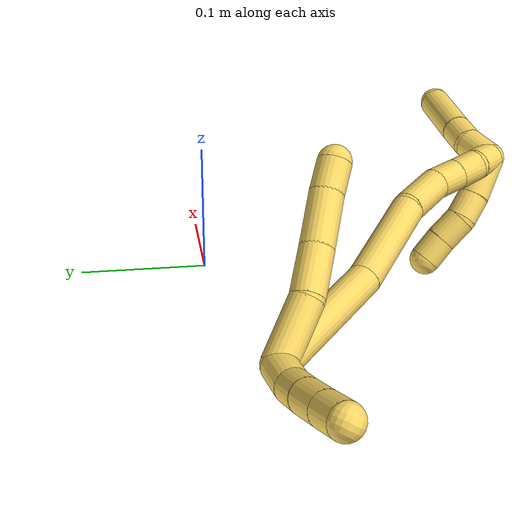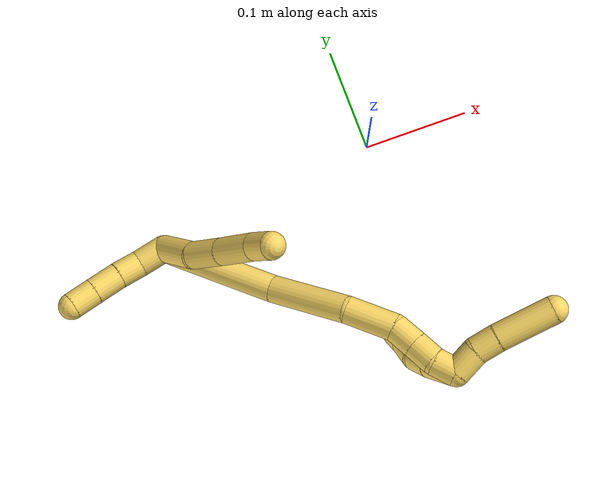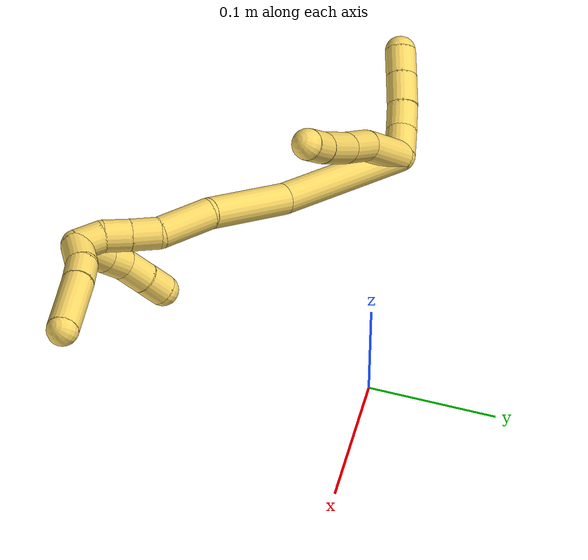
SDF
<sdf version="1.7">
 <world name="default">
  <model name="5">
   <static>0</static>
   <link name="5">
    <collision name="collision-cylinder-e_1_2_8">
     <pose>0.001372 -0.002314 -0.023745 3.04445 0.057442 1.06758</pose>
     <geometry><cylinder><radius>0.0125</radius><length>0.047795</length></cylinder></geometry>
     <surface>
      <friction><ode><mu>1.16</mu><mu2>1.16</mu2><slip1>0</slip1><slip2>0</slip2></ode></friction>
      <contact><ode><kp>1e+06</kp><kd>1</kd><max_vel>0</max_vel><min_depth>0.001</min_depth></ode></contact>
     </surface>
    </collision>
    <visual name="visual-cylinder-e_1_2_8">
     <pose>0.001372 -0.002314 -0.023745 3.04445 0.057442 1.06758</pose>
     <geometry><cylinder><radius>0.0125</radius><length>0.047795</length></cylinder></geometry>
     <material><ambient>1 0.858824 0.4 1</ambient></material>
    </visual>
    <collision name="collision-cylinder-e_2_8_9">
     <pose>0.003618 -0.01138 -0.064525 2.76418 0.047657 0.248302</pose>
     <geometry><cylinder><radius>0.0125</radius><length>0.036688</length></cylinder></geometry>
     <surface>
      <friction><ode><mu>1.16</mu><mu2>1.16</mu2><slip1>0</slip1><slip2>0</slip2></ode></friction>
      <contact><ode><kp>1e+06</kp><kd>1</kd><max_vel>0</max_vel><min_depth>0.001</min_depth></ode></contact>
     </surface>
    </collision>
    <visual name="visual-cylinder-e_2_8_9">
     <pose>0.003618 -0.01138 -0.064525 2.76418 0.047657 0.248302</pose>
     <geometry><cylinder><radius>0.0125</radius><length>0.036688</length></cylinder></geometry>
     <material><ambient>1 0.858824 0.4 1</ambient></material>
    </visual>
    <collision name="collision-cylinder-e_3_9_10">
     <pose>0.004293 -0.025081 -0.101097 2.79992 -0.009583 -0.055536</pose>
     <geometry><cylinder><radius>0.0125</radius><length>0.041478</length></cylinder></geometry>
     <surface>
      <friction><ode><mu>1.16</mu><mu2>1.16</mu2><slip1>0</slip1><slip2>0</slip2></ode></friction>
      <contact><ode><kp>1e+06</kp><kd>1</kd><max_vel>0</max_vel><min_depth>0.001</min_depth></ode></contact>
     </surface>
    </collision>
    <visual name="visual-cylinder-e_3_9_10">
     <pose>0.004293 -0.025081 -0.101097 2.79992 -0.009583 -0.055536</pose>
     <geometry><cylinder><radius>0.0125</radius><length>0.041478</length></cylinder></geometry>
     <material><ambient>1 0.858824 0.4 1</ambient></material>
    </visual>
    <collision name="collision-cylinder-e_4_10_6">
     <pose>0.003706 -0.034821 -0.132321 2.90714 -0.032341 -0.272942</pose>
     <geometry><cylinder><radius>0.0125</radius><length>0.024039</length></cylinder></geometry>
     <surface>
      <friction><ode><mu>1.16</mu><mu2>1.16</mu2><slip1>0</slip1><slip2>0</slip2></ode></friction>
      <contact><ode><kp>1e+06</kp><kd>1</kd><max_vel>0</max_vel><min_depth>0.001</min_depth></ode></contact>
     </surface>
    </collision>
    <visual name="visual-cylinder-e_4_10_6">
     <pose>0.003706 -0.034821 -0.132321 2.90714 -0.032341 -0.272942</pose>
     <geometry><cylinder><radius>0.0125</radius><length>0.024039</length></cylinder></geometry>
     <material><ambient>1 0.858824 0.4 1</ambient></material>
    </visual>
    <collision name="collision-cylinder-e_1_2_11">
     <pose>-0.00233 0.012081 0.004425 -1.21967 -0.179118 0.125316</pose>
     <geometry><cylinder><radius>0.0125</radius><length>0.026151</length></cylinder></geometry>
     <surface>
      <friction><ode><mu>1.16</mu><mu2>1.16</mu2><slip1>0</slip1><slip2>0</slip2></ode></friction>
      <contact><ode><kp>1e+06</kp><kd>1</kd><max_vel>0</max_vel><min_depth>0.001</min_depth></ode></contact>
     </surface>
    </collision>
    <visual name="visual-cylinder-e_1_2_11">
     <pose>-0.00233 0.012081 0.004425 -1.21967 -0.179118 0.125316</pose>
     <geometry><cylinder><radius>0.0125</radius><length>0.026151</length></cylinder></geometry>
     <material><ambient>1 0.858824 0.4 1</ambient></material>
    </visual>
    <collision name="collision-cylinder-e_2_11_12">
     <pose>-0.008414 0.035109 0.010271 -1.4418 -0.327914 0.288713</pose>
     <geometry><cylinder><radius>0.0125</radius><length>0.023319</length></cylinder></geometry>
     <surface>
      <friction><ode><mu>1.16</mu><mu2>1.16</mu2><slip1>0</slip1><slip2>0</slip2></ode></friction>
      <contact><ode><kp>1e+06</kp><kd>1</kd><max_vel>0</max_vel><min_depth>0.001</min_depth></ode></contact>
     </surface>
    </collision>
    <visual name="visual-cylinder-e_2_11_12">
     <pose>-0.008414 0.035109 0.010271 -1.4418 -0.327914 0.288713</pose>
     <geometry><cylinder><radius>0.0125</radius><length>0.023319</length></cylinder></geometry>
     <material><ambient>1 0.858824 0.4 1</ambient></material>
    </visual>
    <collision name="collision-cylinder-e_3_12_13">
     <pose>-0.015697 0.058826 0.012882 -1.47777 -0.268367 0.244744</pose>
     <geometry><cylinder><radius>0.0125</radius><length>0.026604</length></cylinder></geometry>
     <surface>
      <friction><ode><mu>1.16</mu><mu2>1.16</mu2><slip1>0</slip1><slip2>0</slip2></ode></friction>
      <contact><ode><kp>1e+06</kp><kd>1</kd><max_vel>0</max_vel><min_depth>0.001</min_depth></ode></contact>
     </surface>
    </collision>
    <visual name="visual-cylinder-e_3_12_13">
     <pose>-0.015697 0.058826 0.012882 -1.47777 -0.268367 0.244744</pose>
     <geometry><cylinder><radius>0.0125</radius><length>0.026604</length></cylinder></geometry>
     <material><ambient>1 0.858824 0.4 1</ambient></material>
    </visual>
    <collision name="collision-cylinder-e_4_13_5">
     <pose>-0.02236 0.083101 0.015031 -1.48781 -0.265263 0.244334</pose>
     <geometry><cylinder><radius>0.0125</radius><length>0.023926</length></cylinder></geometry>
     <surface>
      <friction><ode><mu>1.16</mu><mu2>1.16</mu2><slip1>0</slip1><slip2>0</slip2></ode></friction>
      <contact><ode><kp>1e+06</kp><kd>1</kd><max_vel>0</max_vel><min_depth>0.001</min_depth></ode></contact>
     </surface>
    </collision>
    <visual name="visual-cylinder-e_4_13_5">
     <pose>-0.02236 0.083101 0.015031 -1.48781 -0.265263 0.244334</pose>
     <geometry><cylinder><radius>0.0125</radius><length>0.023926</length></cylinder></geometry>
     <material><ambient>1 0.858824 0.4 1</ambient></material>
    </visual>
    <collision name="collision-cylinder-e_1_2_14">
     <pose>0.034171 -0.013938 -0.041923 2.82063 0.658347 2.25654</pose>
     <geometry><cylinder><radius>0.0125</radius><length>0.111704</length></cylinder></geometry>
     <surface>
      <friction><ode><mu>1.16</mu><mu2>1.16</mu2><slip1>0</slip1><slip2>0</slip2></ode></friction>
      <contact><ode><kp>1e+06</kp><kd>1</kd><max_vel>0</max_vel><min_depth>0.001</min_depth></ode></contact>
     </surface>
    </collision>
    <visual name="visual-cylinder-e_1_2_14">
     <pose>0.034171 -0.013938 -0.041923 2.82063 0.658347 2.25654</pose>
     <geometry><cylinder><radius>0.0125</radius><length>0.111704</length></cylinder></geometry>
     <material><ambient>1 0.858824 0.4 1</ambient></material>
    </visual>
    <collision name="collision-cylinder-e_2_14_15">
     <pose>0.083613 -0.03698 -0.118095 2.88176 0.406878 2.01245</pose>
     <geometry><cylinder><radius>0.0125</radius><length>0.077178</length></cylinder></geometry>
     <surface>
      <friction><ode><mu>1.16</mu><mu2>1.16</mu2><slip1>0</slip1><slip2>0</slip2></ode></friction>
      <contact><ode><kp>1e+06</kp><kd>1</kd><max_vel>0</max_vel><min_depth>0.001</min_depth></ode></contact>
     </surface>
    </collision>
    <visual name="visual-cylinder-e_2_14_15">
     <pose>0.083613 -0.03698 -0.118095 2.88176 0.406878 2.01245</pose>
     <geometry><cylinder><radius>0.0125</radius><length>0.077178</length></cylinder></geometry>
     <material><ambient>1 0.858824 0.4 1</ambient></material>
    </visual>
    <collision name="collision-cylinder-e_3_15_16">
     <pose>0.113308 -0.05184 -0.168784 2.80487 0.691621 2.26</pose>
     <geometry><cylinder><radius>0.0125</radius><length>0.045231</length></cylinder></geometry>
     <surface>
      <friction><ode><mu>1.16</mu><mu2>1.16</mu2><slip1>0</slip1><slip2>0</slip2></ode></friction>
      <contact><ode><kp>1e+06</kp><kd>1</kd><max_vel>0</max_vel><min_depth>0.001</min_depth></ode></contact>
     </surface>
    </collision>
    <visual name="visual-cylinder-e_3_15_16">
     <pose>0.113308 -0.05184 -0.168784 2.80487 0.691621 2.26</pose>
     <geometry><cylinder><radius>0.0125</radius><length>0.045231</length></cylinder></geometry>
     <material><ambient>1 0.858824 0.4 1</ambient></material>
    </visual>
    <collision name="collision-cylinder-e_4_16_17">
     <pose>0.135555 -0.056568 -0.193677 -3.02066 0.743109 -2.83331</pose>
     <geometry><cylinder><radius>0.0125</radius><length>0.023125</length></cylinder></geometry>
     <surface>
      <friction><ode><mu>1.16</mu><mu2>1.16</mu2><slip1>0</slip1><slip2>0</slip2></ode></friction>
      <contact><ode><kp>1e+06</kp><kd>1</kd><max_vel>0</max_vel><min_depth>0.001</min_depth></ode></contact>
     </surface>
    </collision>
    <visual name="visual-cylinder-e_4_16_17">
     <pose>0.135555 -0.056568 -0.193677 -3.02066 0.743109 -2.83331</pose>
     <geometry><cylinder><radius>0.0125</radius><length>0.023125</length></cylinder></geometry>
     <material><ambient>1 0.858824 0.4 1</ambient></material>
    </visual>
    <collision name="collision-cylinder-e_5_17_18">
     <pose>0.150465 -0.054337 -0.21018 -2.9931 0.716326 -2.74927</pose>
     <geometry><cylinder><radius>0.0125</radius><length>0.021587</length></cylinder></geometry>
     <surface>
      <friction><ode><mu>1.16</mu><mu2>1.16</mu2><slip1>0</slip1><slip2>0</slip2></ode></friction>
      <contact><ode><kp>1e+06</kp><kd>1</kd><max_vel>0</max_vel><min_depth>0.001</min_depth></ode></contact>
     </surface>
    </collision>
    <visual name="visual-cylinder-e_5_17_18">
     <pose>0.150465 -0.054337 -0.21018 -2.9931 0.716326 -2.74927</pose>
     <geometry><cylinder><radius>0.0125</radius><length>0.021587</length></cylinder></geometry>
     <material><ambient>1 0.858824 0.4 1</ambient></material>
    </visual>
    <collision name="collision-cylinder-e_6_18_1">
     <pose>0.165295 -0.054933 -0.225225 2.88956 0.820162 2.57445</pose>
     <geometry><cylinder><radius>0.0125</radius><length>0.021175</length></cylinder></geometry>
     <surface>
      <friction><ode><mu>1.16</mu><mu2>1.16</mu2><slip1>0</slip1><slip2>0</slip2></ode></friction>
      <contact><ode><kp>1e+06</kp><kd>1</kd><max_vel>0</max_vel><min_depth>0.001</min_depth></ode></contact>
     </surface>
    </collision>
    <visual name="visual-cylinder-e_6_18_1">
     <pose>0.165295 -0.054933 -0.225225 2.88956 0.820162 2.57445</pose>
     <geometry><cylinder><radius>0.0125</radius><length>0.021175</length></cylinder></geometry>
     <material><ambient>1 0.858824 0.4 1</ambient></material>
    </visual>
    <collision name="collision-cylinder-e_1_1_19">
     <pose>0.173371 -0.056149 -0.214691 -0.033387 0.019039 -0.000318</pose>
     <geometry><cylinder><radius>0.0125</radius><length>0.035082</length></cylinder></geometry>
     <surface>
      <friction><ode><mu>1.16</mu><mu2>1.16</mu2><slip1>0</slip1><slip2>0</slip2></ode></friction>
      <contact><ode><kp>1e+06</kp><kd>1</kd><max_vel>0</max_vel><min_depth>0.001</min_depth></ode></contact>
     </surface>
    </collision>
    <visual name="visual-cylinder-e_1_1_19">
     <pose>0.173371 -0.056149 -0.214691 -0.033387 0.019039 -0.000318</pose>
     <geometry><cylinder><radius>0.0125</radius><length>0.035082</length></cylinder></geometry>
     <material><ambient>1 0.858824 0.4 1</ambient></material>
    </visual>
    <collision name="collision-cylinder-e_2_19_20">
     <pose>0.172739 -0.056009 -0.186361 0.041253 -0.089061 -0.001838</pose>
     <geometry><cylinder><radius>0.0125</radius><length>0.021707</length></cylinder></geometry>
     <surface>
      <friction><ode><mu>1.16</mu><mu2>1.16</mu2><slip1>0</slip1><slip2>0</slip2></ode></friction>
      <contact><ode><kp>1e+06</kp><kd>1</kd><max_vel>0</max_vel><min_depth>0.001</min_depth></ode></contact>
     </surface>
    </collision>
    <visual name="visual-cylinder-e_2_19_20">
     <pose>0.172739 -0.056009 -0.186361 0.041253 -0.089061 -0.001838</pose>
     <geometry><cylinder><radius>0.0125</radius><length>0.021707</length></cylinder></geometry>
     <material><ambient>1 0.858824 0.4 1</ambient></material>
    </visual>
    <collision name="collision-cylinder-e_3_20_21">
     <pose>0.170553 -0.0605 -0.164934 0.363739 -0.10701 -0.019698</pose>
     <geometry><cylinder><radius>0.0125</radius><length>0.02287</length></cylinder></geometry>
     <surface>
      <friction><ode><mu>1.16</mu><mu2>1.16</mu2><slip1>0</slip1><slip2>0</slip2></ode></friction>
      <contact><ode><kp>1e+06</kp><kd>1</kd><max_vel>0</max_vel><min_depth>0.001</min_depth></ode></contact>
     </surface>
    </collision>
    <visual name="visual-cylinder-e_3_20_21">
     <pose>0.170553 -0.0605 -0.164934 0.363739 -0.10701 -0.019698</pose>
     <geometry><cylinder><radius>0.0125</radius><length>0.02287</length></cylinder></geometry>
     <material><ambient>1 0.858824 0.4 1</ambient></material>
    </visual>
    <collision name="collision-cylinder-e_4_21_4">
     <pose>0.168774 -0.06745 -0.144578 0.290139 -0.054852 -0.008016</pose>
     <geometry><cylinder><radius>0.0125</radius><length>0.020341</length></cylinder></geometry>
     <surface>
      <friction><ode><mu>1.16</mu><mu2>1.16</mu2><slip1>0</slip1><slip2>0</slip2></ode></friction>
      <contact><ode><kp>1e+06</kp><kd>1</kd><max_vel>0</max_vel><min_depth>0.001</min_depth></ode></contact>
     </surface>
    </collision>
    <visual name="visual-cylinder-e_4_21_4">
     <pose>0.168774 -0.06745 -0.144578 0.290139 -0.054852 -0.008016</pose>
     <geometry><cylinder><radius>0.0125</radius><length>0.020341</length></cylinder></geometry>
     <material><ambient>1 0.858824 0.4 1</ambient></material>
    </visual>
    <collision name="collision-cylinder-e_1_1_22">
     <pose>0.170935 -0.068377 -0.236513 1.92415 -0.16776 -0.240088</pose>
     <geometry><cylinder><radius>0.0125</radius><length>0.025172</length></cylinder></geometry>
     <surface>
      <friction><ode><mu>1.16</mu><mu2>1.16</mu2><slip1>0</slip1><slip2>0</slip2></ode></friction>
      <contact><ode><kp>1e+06</kp><kd>1</kd><max_vel>0</max_vel><min_depth>0.001</min_depth></ode></contact>
     </surface>
    </collision>
    <visual name="visual-cylinder-e_1_1_22">
     <pose>0.170935 -0.068377 -0.236513 1.92415 -0.16776 -0.240088</pose>
     <geometry><cylinder><radius>0.0125</radius><length>0.025172</length></cylinder></geometry>
     <material><ambient>1 0.858824 0.4 1</ambient></material>
    </visual>
    <collision name="collision-cylinder-e_2_22_23">
     <pose>0.169679 -0.089465 -0.246194 2.0891 0.077558 0.133386</pose>
     <geometry><cylinder><radius>0.0125</radius><length>0.021812</length></cylinder></geometry>
     <surface>
      <friction><ode><mu>1.16</mu><mu2>1.16</mu2><slip1>0</slip1><slip2>0</slip2></ode></friction>
      <contact><ode><kp>1e+06</kp><kd>1</kd><max_vel>0</max_vel><min_depth>0.001</min_depth></ode></contact>
     </surface>
    </collision>
    <visual name="visual-cylinder-e_2_22_23">
     <pose>0.169679 -0.089465 -0.246194 2.0891 0.077558 0.133386</pose>
     <geometry><cylinder><radius>0.0125</radius><length>0.021812</length></cylinder></geometry>
     <material><ambient>1 0.858824 0.4 1</ambient></material>
    </visual>
    <collision name="collision-cylinder-e_3_23_3">
     <pose>0.174743 -0.121445 -0.264886 2.10416 0.159862 0.278817</pose>
     <geometry><cylinder><radius>0.0125</radius><length>0.053016</length></cylinder></geometry>
     <surface>
      <friction><ode><mu>1.16</mu><mu2>1.16</mu2><slip1>0</slip1><slip2>0</slip2></ode></friction>
      <contact><ode><kp>1e+06</kp><kd>1</kd><max_vel>0</max_vel><min_depth>0.001</min_depth></ode></contact>
     </surface>
    </collision>
    <visual name="visual-cylinder-e_3_23_3">
     <pose>0.174743 -0.121445 -0.264886 2.10416 0.159862 0.278817</pose>
     <geometry><cylinder><radius>0.0125</radius><length>0.053016</length></cylinder></geometry>
     <material><ambient>1 0.858824 0.4 1</ambient></material>
    </visual>
    <collision name="collision-sphere-3">
     <pose>0.178963 -0.14398 -0.278192 0 -0 0</pose>
     <geometry><sphere><radius>0.0125</radius></sphere></geometry>
     <surface>
      <friction><ode><mu>1.16</mu><mu2>1.16</mu2><slip1>0</slip1><slip2>0</slip2></ode></friction>
      <contact><ode><kp>1e+06</kp><kd>1</kd><max_vel>0</max_vel><min_depth>0.001</min_depth></ode></contact>
     </surface>
    </collision>
    <visual name="visual-sphere-3">
     <pose>0.178963 -0.14398 -0.278192 0 -0 0</pose>
     <geometry><sphere><radius>0.0125</radius></sphere></geometry>
     <material><ambient>1 0.858824 0.4 1</ambient></material>
    </visual>
    <collision name="collision-sphere-23">
     <pose>0.170524 -0.09891 -0.251581 0 -0 0</pose>
     <geometry><sphere><radius>0.0125</radius></sphere></geometry>
     <surface>
      <friction><ode><mu>1.16</mu><mu2>1.16</mu2><slip1>0</slip1><slip2>0</slip2></ode></friction>
      <contact><ode><kp>1e+06</kp><kd>1</kd><max_vel>0</max_vel><min_depth>0.001</min_depth></ode></contact>
     </surface>
    </collision>
    <visual name="visual-sphere-23">
     <pose>0.170524 -0.09891 -0.251581 0 -0 0</pose>
     <geometry><sphere><radius>0.0125</radius></sphere></geometry>
     <material><ambient>1 0.858824 0.4 1</ambient></material>
    </visual>
    <collision name="collision-sphere-22">
     <pose>0.168834 -0.08002 -0.240807 0 -0 0</pose>
     <geometry><sphere><radius>0.0125</radius></sphere></geometry>
     <surface>
      <friction><ode><mu>1.16</mu><mu2>1.16</mu2><slip1>0</slip1><slip2>0</slip2></ode></friction>
      <contact><ode><kp>1e+06</kp><kd>1</kd><max_vel>0</max_vel><min_depth>0.001</min_depth></ode></contact>
     </surface>
    </collision>
    <visual name="visual-sphere-22">
     <pose>0.168834 -0.08002 -0.240807 0 -0 0</pose>
     <geometry><sphere><radius>0.0125</radius></sphere></geometry>
     <material><ambient>1 0.858824 0.4 1</ambient></material>
    </visual>
    <collision name="collision-sphere-4">
     <pose>0.168216 -0.070355 -0.134847 0 -0 0</pose>
     <geometry><sphere><radius>0.0125</radius></sphere></geometry>
     <surface>
      <friction><ode><mu>1.16</mu><mu2>1.16</mu2><slip1>0</slip1><slip2>0</slip2></ode></friction>
      <contact><ode><kp>1e+06</kp><kd>1</kd><max_vel>0</max_vel><min_depth>0.001</min_depth></ode></contact>
     </surface>
    </collision>
    <visual name="visual-sphere-4">
     <pose>0.168216 -0.070355 -0.134847 0 -0 0</pose>
     <geometry><sphere><radius>0.0125</radius></sphere></geometry>
     <material><ambient>1 0.858824 0.4 1</ambient></material>
    </visual>
    <collision name="collision-sphere-21">
     <pose>0.169331 -0.064545 -0.154308 0 -0 0</pose>
     <geometry><sphere><radius>0.0125</radius></sphere></geometry>
     <surface>
      <friction><ode><mu>1.16</mu><mu2>1.16</mu2><slip1>0</slip1><slip2>0</slip2></ode></friction>
      <contact><ode><kp>1e+06</kp><kd>1</kd><max_vel>0</max_vel><min_depth>0.001</min_depth></ode></contact>
     </surface>
    </collision>
    <visual name="visual-sphere-21">
     <pose>0.169331 -0.064545 -0.154308 0 -0 0</pose>
     <geometry><sphere><radius>0.0125</radius></sphere></geometry>
     <material><ambient>1 0.858824 0.4 1</ambient></material>
    </visual>
    <collision name="collision-sphere-20">
     <pose>0.171774 -0.056455 -0.175559 0 -0 0</pose>
     <geometry><sphere><radius>0.0125</radius></sphere></geometry>
     <surface>
      <friction><ode><mu>1.16</mu><mu2>1.16</mu2><slip1>0</slip1><slip2>0</slip2></ode></friction>
      <contact><ode><kp>1e+06</kp><kd>1</kd><max_vel>0</max_vel><min_depth>0.001</min_depth></ode></contact>
     </surface>
    </collision>
    <visual name="visual-sphere-20">
     <pose>0.171774 -0.056455 -0.175559 0 -0 0</pose>
     <geometry><sphere><radius>0.0125</radius></sphere></geometry>
     <material><ambient>1 0.858824 0.4 1</ambient></material>
    </visual>
    <collision name="collision-sphere-11">
     <pose>-0.004659 0.024163 0.008851 0 -0 0</pose>
     <geometry><sphere><radius>0.0125</radius></sphere></geometry>
     <surface>
      <friction><ode><mu>1.16</mu><mu2>1.16</mu2><slip1>0</slip1><slip2>0</slip2></ode></friction>
      <contact><ode><kp>1e+06</kp><kd>1</kd><max_vel>0</max_vel><min_depth>0.001</min_depth></ode></contact>
     </surface>
    </collision>
    <visual name="visual-sphere-11">
     <pose>-0.004659 0.024163 0.008851 0 -0 0</pose>
     <geometry><sphere><radius>0.0125</radius></sphere></geometry>
     <material><ambient>1 0.858824 0.4 1</ambient></material>
    </visual>
    <collision name="collision-sphere-6">
     <pose>0.003317 -0.037612 -0.144006 0 -0 0</pose>
     <geometry><sphere><radius>0.0125</radius></sphere></geometry>
     <surface>
      <friction><ode><mu>1.16</mu><mu2>1.16</mu2><slip1>0</slip1><slip2>0</slip2></ode></friction>
      <contact><ode><kp>1e+06</kp><kd>1</kd><max_vel>0</max_vel><min_depth>0.001</min_depth></ode></contact>
     </surface>
    </collision>
    <visual name="visual-sphere-6">
     <pose>0.003317 -0.037612 -0.144006 0 -0 0</pose>
     <geometry><sphere><radius>0.0125</radius></sphere></geometry>
     <material><ambient>1 0.858824 0.4 1</ambient></material>
    </visual>
    <collision name="collision-sphere-10">
     <pose>0.004094 -0.03203 -0.120637 0 -0 0</pose>
     <geometry><sphere><radius>0.0125</radius></sphere></geometry>
     <surface>
      <friction><ode><mu>1.16</mu><mu2>1.16</mu2><slip1>0</slip1><slip2>0</slip2></ode></friction>
      <contact><ode><kp>1e+06</kp><kd>1</kd><max_vel>0</max_vel><min_depth>0.001</min_depth></ode></contact>
     </surface>
    </collision>
    <visual name="visual-sphere-10">
     <pose>0.004094 -0.03203 -0.120637 0 -0 0</pose>
     <geometry><sphere><radius>0.0125</radius></sphere></geometry>
     <material><ambient>1 0.858824 0.4 1</ambient></material>
    </visual>
    <collision name="collision-sphere-9">
     <pose>0.004492 -0.018133 -0.081558 0 -0 0</pose>
     <geometry><sphere><radius>0.0125</radius></sphere></geometry>
     <surface>
      <friction><ode><mu>1.16</mu><mu2>1.16</mu2><slip1>0</slip1><slip2>0</slip2></ode></friction>
      <contact><ode><kp>1e+06</kp><kd>1</kd><max_vel>0</max_vel><min_depth>0.001</min_depth></ode></contact>
     </surface>
    </collision>
    <visual name="visual-sphere-9">
     <pose>0.004492 -0.018133 -0.081558 0 -0 0</pose>
     <geometry><sphere><radius>0.0125</radius></sphere></geometry>
     <material><ambient>1 0.858824 0.4 1</ambient></material>
    </visual>
    <collision name="collision-sphere-2">
     <geometry><sphere><radius>0.0125</radius></sphere></geometry>
     <surface>
      <friction><ode><mu>1.16</mu><mu2>1.16</mu2><slip1>0</slip1><slip2>0</slip2></ode></friction>
      <contact><ode><kp>1e+06</kp><kd>1</kd><max_vel>0</max_vel><min_depth>0.001</min_depth></ode></contact>
     </surface>
    </collision>
    <visual name="visual-sphere-2">
     <geometry><sphere><radius>0.0125</radius></sphere></geometry>
     <material><ambient>1 0.858824 0.4 1</ambient></material>
    </visual>
    <collision name="collision-sphere-19">
     <pose>0.173705 -0.055563 -0.197162 0 -0 0</pose>
     <geometry><sphere><radius>0.0125</radius></sphere></geometry>
     <surface>
      <friction><ode><mu>1.16</mu><mu2>1.16</mu2><slip1>0</slip1><slip2>0</slip2></ode></friction>
      <contact><ode><kp>1e+06</kp><kd>1</kd><max_vel>0</max_vel><min_depth>0.001</min_depth></ode></contact>
     </surface>
    </collision>
    <visual name="visual-sphere-19">
     <pose>0.173705 -0.055563 -0.197162 0 -0 0</pose>
     <geometry><sphere><radius>0.0125</radius></sphere></geometry>
     <material><ambient>1 0.858824 0.4 1</ambient></material>
    </visual>
    <collision name="collision-sphere-8">
     <pose>0.002744 -0.004628 -0.047491 0 -0 0</pose>
     <geometry><sphere><radius>0.0125</radius></sphere></geometry>
     <surface>
      <friction><ode><mu>1.16</mu><mu2>1.16</mu2><slip1>0</slip1><slip2>0</slip2></ode></friction>
      <contact><ode><kp>1e+06</kp><kd>1</kd><max_vel>0</max_vel><min_depth>0.001</min_depth></ode></contact>
     </surface>
    </collision>
    <visual name="visual-sphere-8">
     <pose>0.002744 -0.004628 -0.047491 0 -0 0</pose>
     <geometry><sphere><radius>0.0125</radius></sphere></geometry>
     <material><ambient>1 0.858824 0.4 1</ambient></material>
    </visual>
    <collision name="collision-sphere-12">
     <pose>-0.01217 0.046056 0.011691 0 -0 0</pose>
     <geometry><sphere><radius>0.0125</radius></sphere></geometry>
     <surface>
      <friction><ode><mu>1.16</mu><mu2>1.16</mu2><slip1>0</slip1><slip2>0</slip2></ode></friction>
      <contact><ode><kp>1e+06</kp><kd>1</kd><max_vel>0</max_vel><min_depth>0.001</min_depth></ode></contact>
     </surface>
    </collision>
    <visual name="visual-sphere-12">
     <pose>-0.01217 0.046056 0.011691 0 -0 0</pose>
     <geometry><sphere><radius>0.0125</radius></sphere></geometry>
     <material><ambient>1 0.858824 0.4 1</ambient></material>
    </visual>
    <collision name="collision-sphere-13">
     <pose>-0.019224 0.071596 0.014074 0 -0 0</pose>
     <geometry><sphere><radius>0.0125</radius></sphere></geometry>
     <surface>
      <friction><ode><mu>1.16</mu><mu2>1.16</mu2><slip1>0</slip1><slip2>0</slip2></ode></friction>
      <contact><ode><kp>1e+06</kp><kd>1</kd><max_vel>0</max_vel><min_depth>0.001</min_depth></ode></contact>
     </surface>
    </collision>
    <visual name="visual-sphere-13">
     <pose>-0.019224 0.071596 0.014074 0 -0 0</pose>
     <geometry><sphere><radius>0.0125</radius></sphere></geometry>
     <material><ambient>1 0.858824 0.4 1</ambient></material>
    </visual>
    <collision name="collision-sphere-5">
     <pose>-0.025496 0.094606 0.015988 0 -0 0</pose>
     <geometry><sphere><radius>0.0125</radius></sphere></geometry>
     <surface>
      <friction><ode><mu>1.16</mu><mu2>1.16</mu2><slip1>0</slip1><slip2>0</slip2></ode></friction>
      <contact><ode><kp>1e+06</kp><kd>1</kd><max_vel>0</max_vel><min_depth>0.001</min_depth></ode></contact>
     </surface>
    </collision>
    <visual name="visual-sphere-5">
     <pose>-0.025496 0.094606 0.015988 0 -0 0</pose>
     <geometry><sphere><radius>0.0125</radius></sphere></geometry>
     <material><ambient>1 0.858824 0.4 1</ambient></material>
    </visual>
    <collision name="collision-sphere-14">
     <pose>0.068341 -0.027876 -0.083846 0 -0 0</pose>
     <geometry><sphere><radius>0.0125</radius></sphere></geometry>
     <surface>
      <friction><ode><mu>1.16</mu><mu2>1.16</mu2><slip1>0</slip1><slip2>0</slip2></ode></friction>
      <contact><ode><kp>1e+06</kp><kd>1</kd><max_vel>0</max_vel><min_depth>0.001</min_depth></ode></contact>
     </surface>
    </collision>
    <visual name="visual-sphere-14">
     <pose>0.068341 -0.027876 -0.083846 0 -0 0</pose>
     <geometry><sphere><radius>0.0125</radius></sphere></geometry>
     <material><ambient>1 0.858824 0.4 1</ambient></material>
    </visual>
    <collision name="collision-sphere-15">
     <pose>0.098884 -0.046085 -0.152344 0 -0 0</pose>
     <geometry><sphere><radius>0.0125</radius></sphere></geometry>
     <surface>
      <friction><ode><mu>1.16</mu><mu2>1.16</mu2><slip1>0</slip1><slip2>0</slip2></ode></friction>
      <contact><ode><kp>1e+06</kp><kd>1</kd><max_vel>0</max_vel><min_depth>0.001</min_depth></ode></contact>
     </surface>
    </collision>
    <visual name="visual-sphere-15">
     <pose>0.098884 -0.046085 -0.152344 0 -0 0</pose>
     <geometry><sphere><radius>0.0125</radius></sphere></geometry>
     <material><ambient>1 0.858824 0.4 1</ambient></material>
    </visual>
    <collision name="collision-sphere-16">
     <pose>0.127732 -0.057595 -0.185225 0 -0 0</pose>
     <geometry><sphere><radius>0.0125</radius></sphere></geometry>
     <surface>
      <friction><ode><mu>1.16</mu><mu2>1.16</mu2><slip1>0</slip1><slip2>0</slip2></ode></friction>
      <contact><ode><kp>1e+06</kp><kd>1</kd><max_vel>0</max_vel><min_depth>0.001</min_depth></ode></contact>
     </surface>
    </collision>
    <visual name="visual-sphere-16">
     <pose>0.127732 -0.057595 -0.185225 0 -0 0</pose>
     <geometry><sphere><radius>0.0125</radius></sphere></geometry>
     <material><ambient>1 0.858824 0.4 1</ambient></material>
    </visual>
    <collision name="collision-sphere-17">
     <pose>0.143378 -0.055541 -0.202129 0 -0 0</pose>
     <geometry><sphere><radius>0.0125</radius></sphere></geometry>
     <surface>
      <friction><ode><mu>1.16</mu><mu2>1.16</mu2><slip1>0</slip1><slip2>0</slip2></ode></friction>
      <contact><ode><kp>1e+06</kp><kd>1</kd><max_vel>0</max_vel><min_depth>0.001</min_depth></ode></contact>
     </surface>
    </collision>
    <visual name="visual-sphere-17">
     <pose>0.143378 -0.055541 -0.202129 0 -0 0</pose>
     <geometry><sphere><radius>0.0125</radius></sphere></geometry>
     <material><ambient>1 0.858824 0.4 1</ambient></material>
    </visual>
    <collision name="collision-sphere-18">
     <pose>0.157552 -0.053132 -0.218231 0 -0 0</pose>
     <geometry><sphere><radius>0.0125</radius></sphere></geometry>
     <surface>
      <friction><ode><mu>1.16</mu><mu2>1.16</mu2><slip1>0</slip1><slip2>0</slip2></ode></friction>
      <contact><ode><kp>1e+06</kp><kd>1</kd><max_vel>0</max_vel><min_depth>0.001</min_depth></ode></contact>
     </surface>
    </collision>
    <visual name="visual-sphere-18">
     <pose>0.157552 -0.053132 -0.218231 0 -0 0</pose>
     <geometry><sphere><radius>0.0125</radius></sphere></geometry>
     <material><ambient>1 0.858824 0.4 1</ambient></material>
    </visual>
    <collision name="collision-sphere-1">
     <pose>0.173037 -0.056734 -0.232219 0 -0 0</pose>
     <geometry><sphere><radius>0.0125</radius></sphere></geometry>
     <surface>
      <friction><ode><mu>1.16</mu><mu2>1.16</mu2><slip1>0</slip1><slip2>0</slip2></ode></friction>
      <contact><ode><kp>1e+06</kp><kd>1</kd><max_vel>0</max_vel><min_depth>0.001</min_depth></ode></contact>
     </surface>
    </collision>
    <visual name="visual-sphere-1">
     <pose>0.173037 -0.056734 -0.232219 0 -0 0</pose>
     <geometry><sphere><radius>0.0125</radius></sphere></geometry>
     <material><ambient>1 0.858824 0.4 1</ambient></material>
    </visual>
    <inertial>
     <pose>0.078623 -0.032227 -0.118256 0 -0 0</pose>
     <mass>0.75</mass>
     <inertia>
      <ixx>0.000113</ixx>
      <ixy>0</ixy>
      <ixz>0</ixz>
      <iyy>0.000229</iyy>
      <iyz>0</iyz>
      <izz>-6.7e-05</izz>
     </inertia>
    </inertial>
   </link>
   <pose>-0.212552 -0.030653 0.016402 3.02138 0.664204 -1.0862</pose>
  </model>
 </world>
</sdf>
